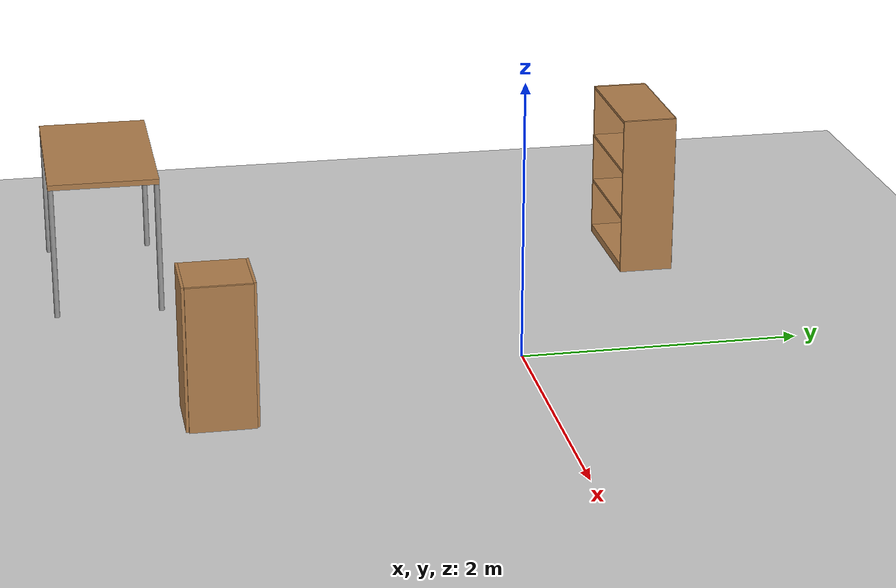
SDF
<sdf version="1.6">
 <world name="default">
  <light name="sun" type="directional">
   <pose>0 0 10 0 -0 0</pose>
   <diffuse>0.8 0.8 0.8 1</diffuse>
   <specular>0.1 0.1 0.1 1</specular>
   <attenuation>
    <range>1000</range>
    <constant>0.9</constant>
    <linear>0.01</linear>
    <quadratic>0.001</quadratic>
   </attenuation>
   <direction>-0.5 0.5 -1</direction>
  </light>
  <model name="ground_plane">
   <static>1</static>
   <link name="link">
    <collision name="collision">
     <geometry><plane><normal>0 0 1</normal><size>100 100</size></plane></geometry>
     <surface><friction><ode><mu>100</mu><mu2>50</mu2></ode></friction></surface>
    </collision>
    <visual name="visual">
     <cast_shadows>0</cast_shadows>
     <geometry><plane><normal>0 0 1</normal><size>100 100</size></plane></geometry>
     <material>
      <script><uri>file://media/materials/scripts/gazebo.material</uri><name>Gazebo/Grey</name></script>
     </material>
    </visual>
   </link>
  </model>
  <physics name="default_physics" default="0" type="ode">
   <real_time_update_rate>1000</real_time_update_rate>
   <max_step_size>0.001</max_step_size>
   <real_time_factor>1</real_time_factor>
   <ode>
    <solver>
     <type>quick</type>
     <iters>150</iters>
     <precon_iters>0</precon_iters>
     <sor>1.4</sor>
     <use_dynamic_moi_rescaling>1</use_dynamic_moi_rescaling>
    </solver>
    <constraints>
     <cfm>1e-05</cfm>
     <erp>0.2</erp>
     <contact_max_correcting_vel>2000</contact_max_correcting_vel>
     <contact_surface_layer>0.01</contact_surface_layer>
    </constraints>
   </ode>
  </physics>
  <scene><ambient>0.4 0.4 0.4 1</ambient><background>0.7 0.7 0.7 1</background><shadows>1</shadows></scene>
  <gravity>0 0 -9.8</gravity>
  <magnetic_field>6e-06 2.3e-05 -4.2e-05</magnetic_field>
  <atmosphere type="adiabatic"/>
  <spherical_coordinates>
   <surface_model>EARTH_WGS84</surface_model>
   <latitude_deg>0</latitude_deg>
   <longitude_deg>0</longitude_deg>
   <elevation>0</elevation>
   <heading_deg>0</heading_deg>
  </spherical_coordinates>
  <model name="bookshelf">
   <static>1</static>
   <link name="link">
    <inertial><mass>1</mass></inertial>
    <collision name="back">
     <pose>0 0.005 0.6 0 -0 0</pose>
     <geometry><box><size>0.9 0.01 1.2</size></box></geometry>
    </collision>
    <visual name="visual1">
     <pose>0 0.005 0.6 0 -0 0</pose>
     <geometry><box><size>0.9 0.01 1.2</size></box></geometry>
     <material>
      <script><uri>file://media/materials/scripts/gazebo.material</uri><name>Gazebo/Wood</name></script>
     </material>
    </visual>
    <collision name="left_side">
     <pose>0.45 -0.195 0.6 0 -0 0</pose>
     <geometry><box><size>0.02 0.4 1.2</size></box></geometry>
    </collision>
    <visual name="visual2">
     <pose>0.45 -0.195 0.6 0 -0 0</pose>
     <geometry><box><size>0.02 0.4 1.2</size></box></geometry>
     <material>
      <script><uri>file://media/materials/scripts/gazebo.material</uri><name>Gazebo/Wood</name></script>
     </material>
    </visual>
    <collision name="right_side">
     <pose>-0.45 -0.195 0.6 0 -0 0</pose>
     <geometry><box><size>0.02 0.4 1.2</size></box></geometry>
    </collision>
    <visual name="visual3">
     <pose>-0.45 -0.195 0.6 0 -0 0</pose>
     <geometry><box><size>0.02 0.4 1.2</size></box></geometry>
     <material>
      <script><uri>file://media/materials/scripts/gazebo.material</uri><name>Gazebo/Wood</name></script>
     </material>
    </visual>
    <collision name="bottom">
     <pose>0 -0.195 0.03 0 -0 0</pose>
     <geometry><box><size>0.88 0.4 0.06</size></box></geometry>
    </collision>
    <visual name="visual4">
     <pose>0 -0.195 0.03 0 -0 0</pose>
     <geometry><box><size>0.88 0.4 0.06</size></box></geometry>
     <material>
      <script><uri>file://media/materials/scripts/gazebo.material</uri><name>Gazebo/Wood</name></script>
     </material>
    </visual>
    <collision name="top">
     <pose>0 -0.195 1.19 0 -0 0</pose>
     <geometry><box><size>0.88 0.4 0.02</size></box></geometry>
    </collision>
    <visual name="visual5">
     <pose>0 -0.195 1.19 0 -0 0</pose>
     <geometry><box><size>0.88 0.4 0.02</size></box></geometry>
     <material>
      <script><uri>file://media/materials/scripts/gazebo.material</uri><name>Gazebo/Wood</name></script>
     </material>
    </visual>
    <collision name="low_shelf">
     <pose>0 -0.195 0.43 0 -0 0</pose>
     <geometry><box><size>0.88 0.4 0.02</size></box></geometry>
    </collision>
    <visual name="visual6">
     <pose>0 -0.195 0.43 0 -0 0</pose>
     <geometry><box><size>0.88 0.4 0.02</size></box></geometry>
     <material>
      <script><uri>file://media/materials/scripts/gazebo.material</uri><name>Gazebo/Wood</name></script>
     </material>
    </visual>
    <collision name="high_shelf">
     <pose>0 -0.195 0.8 0 -0 0</pose>
     <geometry><box><size>0.88 0.4 0.02</size></box></geometry>
    </collision>
    <visual name="visual7">
     <pose>0 -0.195 0.8 0 -0 0</pose>
     <geometry><box><size>0.88 0.4 0.02</size></box></geometry>
     <material>
      <script><uri>file://media/materials/scripts/gazebo.material</uri><name>Gazebo/Wood</name></script>
     </material>
    </visual>
   </link>
   <pose>-1.90805 1.48245 0 0 -0 0</pose>
  </model>
  <model name="table">
   <static>0</static>
   <link name="link">
    <collision name="surface">
     <pose>0 0 1 0 -0 0</pose>
     <geometry><box><size>1.5 0.8 0.03</size></box></geometry>
     <surface><friction><ode><mu>0.6</mu><mu2>0.6</mu2></ode></friction></surface>
    </collision>
    <visual name="visual1">
     <pose>0 0 1 0 -0 0</pose>
     <geometry><box><size>1.4 0.8 0.04</size></box></geometry>
     <material>
      <script><uri>file://media/materials/scripts/gazebo.material</uri><name>Gazebo/Wood</name></script>
     </material>
    </visual>
    <collision name="front_left_leg">
     <pose>0.68 0.38 0.5 0 -0 0</pose>
     <geometry><cylinder><radius>0.02</radius><length>1</length></cylinder></geometry>
    </collision>
    <visual name="front_left_leg">
     <pose>0.68 0.38 0.5 0 -0 0</pose>
     <geometry><cylinder><radius>0.02</radius><length>1</length></cylinder></geometry>
     <material>
      <script><uri>file://media/materials/scripts/gazebo.material</uri><name>Gazebo/Grey</name></script>
     </material>
    </visual>
    <collision name="front_right_leg">
     <pose>0.68 -0.38 0.5 0 -0 0</pose>
     <geometry><cylinder><radius>0.02</radius><length>1</length></cylinder></geometry>
    </collision>
    <visual name="front_right_leg">
     <pose>0.68 -0.38 0.5 0 -0 0</pose>
     <geometry><cylinder><radius>0.02</radius><length>1</length></cylinder></geometry>
     <material>
      <script><uri>file://media/materials/scripts/gazebo.material</uri><name>Gazebo/Grey</name></script>
     </material>
    </visual>
    <collision name="back_right_leg">
     <pose>-0.68 -0.38 0.5 0 -0 0</pose>
     <geometry><cylinder><radius>0.02</radius><length>1</length></cylinder></geometry>
    </collision>
    <visual name="back_right_leg">
     <pose>-0.68 -0.38 0.5 0 -0 0</pose>
     <geometry><cylinder><radius>0.02</radius><length>1</length></cylinder></geometry>
     <material>
      <script><uri>file://media/materials/scripts/gazebo.material</uri><name>Gazebo/Grey</name></script>
     </material>
    </visual>
    <collision name="back_left_leg">
     <pose>-0.68 0.38 0.5 0 -0 0</pose>
     <geometry><cylinder><radius>0.02</radius><length>1</length></cylinder></geometry>
    </collision>
    <visual name="back_left_leg">
     <pose>-0.68 0.38 0.5 0 -0 0</pose>
     <geometry><cylinder><radius>0.02</radius><length>1</length></cylinder></geometry>
     <material>
      <script><uri>file://media/materials/scripts/gazebo.material</uri><name>Gazebo/Grey</name></script>
     </material>
    </visual>
    <inertial>
     <inertia><ixx>1</ixx><ixy>0</ixy><ixz>0</ixz><iyy>1</iyy><iyz>0</iyz><izz>1</izz></inertia>
     <mass>1</mass>
    </inertial>
   </link>
   <pose>-2.00589 -2.78911 0 0 -0 0</pose>
  </model>
  <model name="cabinet">
   <static>1</static>
   <link name="cabinet_bottom_plate">
    <inertial>
     <pose>0 0 -1 0 -0 0</pose>
     <inertia><ixx>2.05</ixx><ixy>0</ixy><ixz>0</ixz><iyy>2.05</iyy><iyz>0</iyz><izz>2.05</izz></inertia>
     <mass>25</mass>
    </inertial>
    <collision name="cabinet_bottom_plate_geom">
     <pose>0 0 0.01 0 -0 0</pose>
     <geometry><box><size>0.45 0.45 0.02</size></box></geometry>
    </collision>
    <visual name="cabinet_bottom_plate_geom_visual">
     <pose>0 0 0.01 0 -0 0</pose>
     <geometry><box><size>0.45 0.45 0.02</size></box></geometry>
     <material>
      <script><uri>file://media/materials/scripts/gazebo.material</uri><name>Gazebo/Wood</name></script>
     </material>
    </visual>
    <collision name="cabinet_bottom_plate_geom_cabinet_back_plate">
     <pose>0.235 0 0.51 0 -0 0</pose>
     <geometry><box><size>0.02 0.45 1.02</size></box></geometry>
    </collision>
    <visual name="cabinet_bottom_plate_geom_cabinet_back_plate_visual">
     <pose>0.235 0 0.51 0 -0 0</pose>
     <geometry><box><size>0.02 0.45 1.02</size></box></geometry>
     <material>
      <script><uri>file://media/materials/scripts/gazebo.material</uri><name>Gazebo/Wood</name></script>
     </material>
    </visual>
    <collision name="cabinet_bottom_plate_geom_cabinet_left_plate">
     <pose>0 0.235 0.51 0 -0 0</pose>
     <geometry><box><size>0.45 0.02 1.02</size></box></geometry>
    </collision>
    <visual name="cabinet_bottom_plate_geom_cabinet_left_plate_visual">
     <pose>0 0.235 0.51 0 -0 0</pose>
     <geometry><box><size>0.45 0.02 1.02</size></box></geometry>
     <material>
      <script><uri>file://media/materials/scripts/gazebo.material</uri><name>Gazebo/Wood</name></script>
     </material>
    </visual>
    <collision name="cabinet_bottom_plate_geom_cabinet_middle_plate">
     <pose>0 0 0.51 0 -0 0</pose>
     <geometry><box><size>0.45 0.45 0.02</size></box></geometry>
    </collision>
    <visual name="cabinet_bottom_plate_geom_cabinet_middle_plate_visual">
     <pose>0 0 0.51 0 -0 0</pose>
     <geometry><box><size>0.45 0.45 0.02</size></box></geometry>
     <material>
      <script><uri>file://media/materials/scripts/gazebo.material</uri><name>Gazebo/Wood</name></script>
     </material>
    </visual>
    <collision name="cabinet_bottom_plate_geom_cabinet_right_plate">
     <pose>0 -0.235 0.51 0 -0 0</pose>
     <geometry><box><size>0.45 0.02 1.02</size></box></geometry>
    </collision>
    <visual name="cabinet_bottom_plate_geom_cabinet_right_plate_visual">
     <pose>0 -0.235 0.51 0 -0 0</pose>
     <geometry><box><size>0.45 0.02 1.02</size></box></geometry>
     <material>
      <script><uri>file://media/materials/scripts/gazebo.material</uri><name>Gazebo/Wood</name></script>
     </material>
    </visual>
    <collision name="cabinet_bottom_plate_geom_cabinet_top_plate">
     <pose>0 0 1.01 0 -0 0</pose>
     <geometry><box><size>0.45 0.45 0.02</size></box></geometry>
    </collision>
    <visual name="cabinet_bottom_plate_geom_cabinet_top_plate_visual">
     <pose>0 0 1.01 0 -0 0</pose>
     <geometry><box><size>0.45 0.45 0.02</size></box></geometry>
     <material>
      <script><uri>file://media/materials/scripts/gazebo.material</uri><name>Gazebo/Wood</name></script>
     </material>
    </visual>
   </link>
   <pose>0.605674 -2.18766 0 0 -0 0</pose>
  </model>
 </world>
</sdf>
